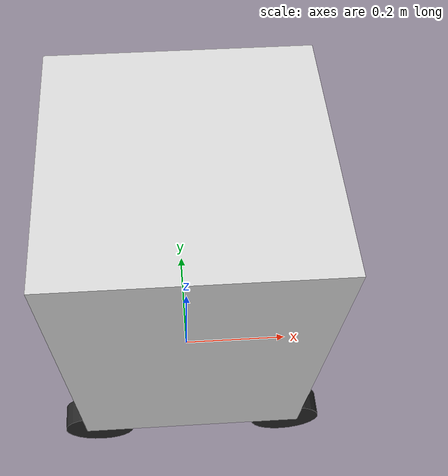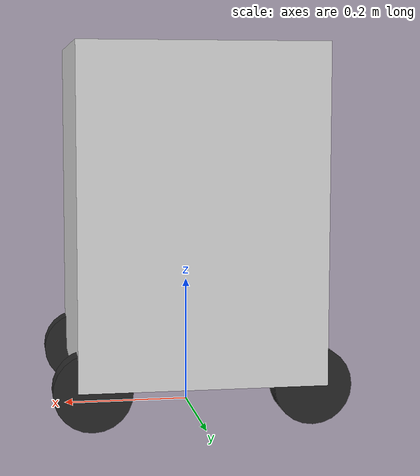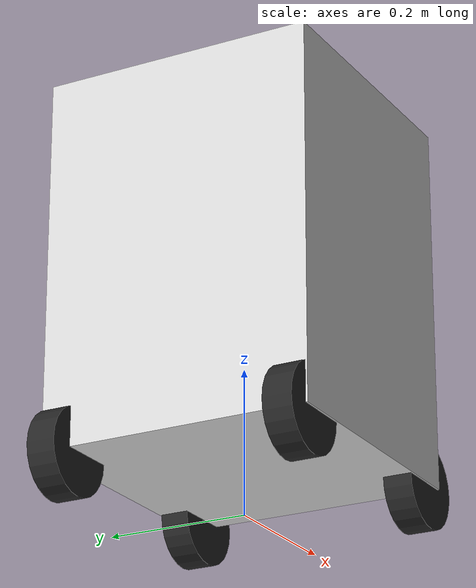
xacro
<?xml version="1.0"?>
<robot xmlns:xacro="http://www.ros.org/wiki/xacro" name="sentry">

  <!-- ══════════════════════════════════════════════
       尺寸参数（单位：米）
  ══════════════════════════════════════════════ -->

  <!-- 底盘 -->
  <xacro:property name="chassis_l"    value="0.380"/>   <!-- 长（估算，可改）-->
  <xacro:property name="chassis_w"    value="0.380"/>   <!-- 宽（估算，可改）-->
  <xacro:property name="chassis_h"    value="0.520"/>   <!-- 高，不含轮子 -->

  <!-- 四舵轮 -->
  <xacro:property name="wheel_radius" value="0.060"/>   <!-- 半径 = 直径120/2 -->
  <xacro:property name="wheel_thick"  value="0.040"/>   <!-- 轮宽（估算）-->
  <xacro:property name="wheel_x"      value="0.1675"/>  <!-- 距中心 x ±：轴距335/2 -->
  <xacro:property name="wheel_y"      value="0.1675"/>  <!-- 距中心 y ±：轮距335/2 -->

  <!-- Mid360：中心距地面 353mm，base_link 在地面 z=0 -->
  <xacro:property name="lidar_z"      value="0.353"/>
  <xacro:property name="lidar_r"      value="0.038"/>   <!-- 官方尺寸 -->
  <xacro:property name="lidar_h"      value="0.040"/>

  <!-- ══════════════════════════════════════════════
       base_footprint（地面投影，Nav2 要求）
  ══════════════════════════════════════════════ -->
  <link name="base_footprint"/>

  <joint name="base_footprint_joint" type="fixed">
    <parent link="base_footprint"/>
    <child  link="base_link"/>
    <origin xyz="0 0 0" rpy="0 0 0"/>
  </joint>

  <!-- ══════════════════════════════════════════════
       base_link（底盘主体，原点在地面中心）
  ══════════════════════════════════════════════ -->
  <link name="base_link">
    <visual>
      <!-- 底盘体从轮轴高度往上，视觉中心 = wheel_radius + chassis_h/2 -->
      <origin xyz="0 0 ${wheel_radius + chassis_h / 2.0}" rpy="0 0 0"/>
      <geometry>
        <box size="${chassis_l} ${chassis_w} ${chassis_h}"/>
      </geometry>
      <material name="light_gray">
        <color rgba="0.85 0.85 0.85 0.9"/>
      </material>
    </visual>
    <collision>
      <origin xyz="0 0 ${wheel_radius + chassis_h / 2.0}" rpy="0 0 0"/>
      <geometry>
        <box size="${chassis_l} ${chassis_w} ${chassis_h}"/>
      </geometry>
    </collision>
    <inertial>
      <origin xyz="0 0 ${wheel_radius + chassis_h / 2.0}" rpy="0 0 0"/>
      <mass value="15.0"/>
      <inertia ixx="0.35" iyy="0.35" izz="0.18"
               ixy="0.0"  ixz="0.0"  iyz="0.0"/>
    </inertial>
  </link>

  <!-- ══════════════════════════════════════════════
       四舵轮宏（仅做视觉和碰撞，运动学由 C 板处理）
  ══════════════════════════════════════════════ -->
  <xacro:macro name="swerve_wheel" params="name x y">
    <link name="${name}">
      <visual>
        <origin xyz="0 0 0" rpy="${pi/2} 0 0"/>
        <geometry>
          <cylinder radius="${wheel_radius}" length="${wheel_thick}"/>
        </geometry>
        <material name="dark_gray">
          <color rgba="0.15 0.15 0.15 1.0"/>
        </material>
      </visual>
      <collision>
        <origin xyz="0 0 0" rpy="${pi/2} 0 0"/>
        <geometry>
          <cylinder radius="${wheel_radius}" length="${wheel_thick}"/>
        </geometry>
      </collision>
      <inertial>
        <mass value="0.6"/>
        <inertia ixx="0.0009" iyy="0.0009" izz="0.0014"
                 ixy="0.0"    ixz="0.0"    iyz="0.0"/>
      </inertial>
    </link>

    <joint name="${name}_joint" type="fixed">
      <parent link="base_link"/>
      <child  link="${name}"/>
      <!-- 轮中心 z = wheel_radius（轮底切地，base_link 在地面）-->
      <origin xyz="${x} ${y} ${wheel_radius}" rpy="0 0 0"/>
    </joint>
  </xacro:macro>

  <xacro:swerve_wheel name="front_left_wheel"  x=" ${wheel_x}"  y=" ${wheel_y}"/>
  <xacro:swerve_wheel name="front_right_wheel" x=" ${wheel_x}"  y="-${wheel_y}"/>
  <xacro:swerve_wheel name="rear_left_wheel"   x="-${wheel_x}"  y=" ${wheel_y}"/>
  <xacro:swerve_wheel name="rear_right_wheel"  x="-${wheel_x}"  y="-${wheel_y}"/>

  <!-- ══════════════════════════════════════════════
       Livox Mid360
  ══════════════════════════════════════════════ -->
  <link name="lidar_link">
    <visual>
      <origin xyz="0 0 0" rpy="0 0 0"/>
      <geometry>
        <cylinder radius="${lidar_r}" length="${lidar_h}"/>
      </geometry>
      <material name="lidar_blue">
        <color rgba="0.05 0.3 0.9 1.0"/>
      </material>
    </visual>
    <collision>
      <origin xyz="0 0 0" rpy="0 0 0"/>
      <geometry>
        <cylinder radius="${lidar_r}" length="${lidar_h}"/>
      </geometry>
    </collision>
    <inertial>
      <mass value="0.26"/>
      <inertia ixx="0.00015" iyy="0.00015" izz="0.0001"
               ixy="0.0"     ixz="0.0"     iyz="0.0"/>
    </inertial>
  </link>

  <!-- Mid360 安装位置（x/y 默认居中，如有偏移请修改 xyz）-->
  <joint name="lidar_joint" type="fixed">
    <parent link="base_link"/>
    <child  link="lidar_link"/>
    <origin xyz="0 0 ${lidar_z}" rpy="0 ${pi/4} 0"/>
  </joint>

  <ros2_control name="SentryHardware" type="system">
    <hardware>
      <plugin>sentry_hardware/ChassisInterface</plugin>
      <param name="serial_port">/dev/ttyABoard</param>
      <param name="baudrate">115200</param>
      <param name="cmd_vel_topic">/cmd_vel</param>
      <param name="odom_topic">/chassis/odom_raw</param>
      <param name="odom_frame">chassis_odom</param>
      <param name="base_frame">base_footprint</param>
      <param name="publish_odom">true</param>
      <param name="publish_tf">false</param>
    </hardware>
    <joint name="chassis">
      <!-- 下行：Nav2 → 控制器 → 这里 → hardware interface → 串口 -->
      <command_interface name="vx"/>
      <command_interface name="vy"/>
      <command_interface name="wz"/>
      <!-- 上行：串口 → hardware interface → 这里（odom 在 chassis_interface 内直接发布）-->
      <state_interface name="vx"/>
      <state_interface name="vy"/>
      <state_interface name="yaw"/>
      <state_interface name="pos_x"/>
      <state_interface name="pos_y"/>
    </joint>
  </ros2_control>

</robot>
